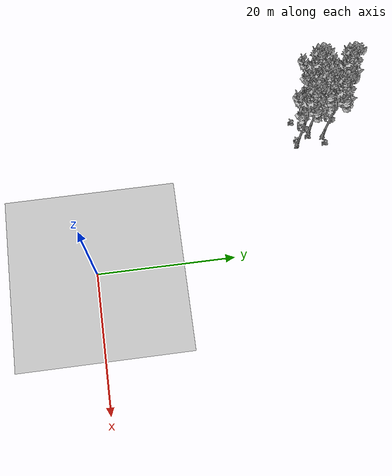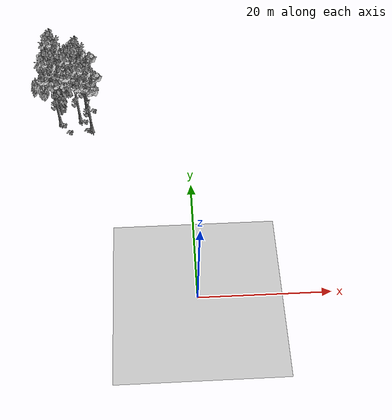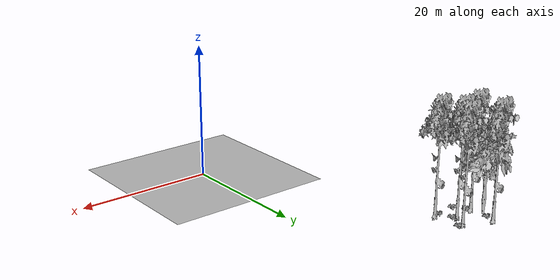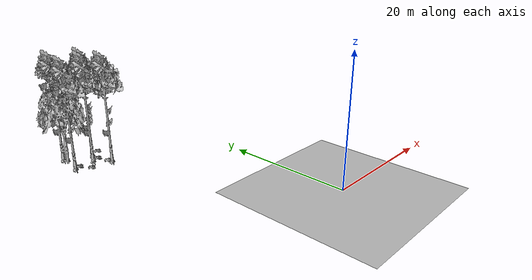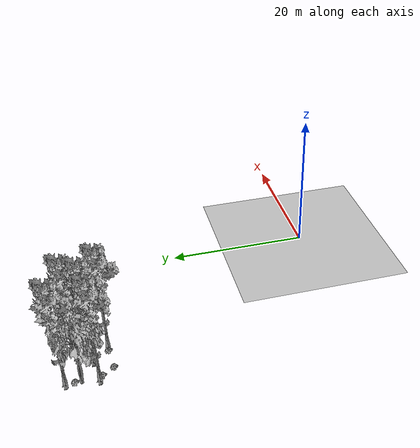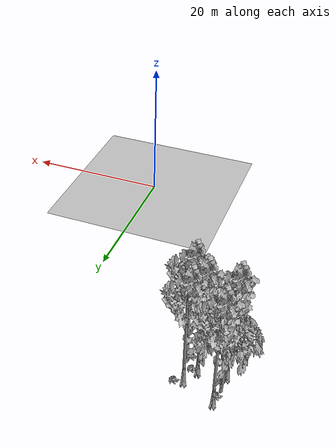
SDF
<sdf version="1.7">
 <world name="default">
  <model name="ground_plane">
   <static>1</static>
   <link name="link">
    <collision name="collision">
     <pose>-50 0 0 0 -0 0</pose>
     <geometry><plane><normal>0 0 1</normal><size>80 80</size></plane></geometry>
     <surface><contact><ode><min_depth>0.01</min_depth><max_vel>0</max_vel></ode></contact></surface>
    </collision>
    <visual name="grass">
     <cast_shadows>0</cast_shadows>
     <geometry>
      <mesh>
       <scale>0.46714285714285714 0.46714285714285714 0.1</scale>
       <uri>file://grass_plane/meshes/grass_plane.dae</uri>
      </mesh>
     </geometry>
    </visual>
   </link>
  </model>
  <model name="Tree 141">
   <static>1</static>
   <pose>-21.41341229493657 38.03727271975933 0 1.57079 -0 0</pose>
   <link name="link">
    <collision name="collision">
     <geometry><mesh><scale>3.5 5 3.5</scale><uri>model://tree_9/meshes/tree_9.obj</uri></mesh></geometry>
    </collision>
    <visual name="visual">
     <geometry><mesh><scale>3.5 5 3.5</scale><uri>model://tree_9/meshes/tree_9.obj</uri></mesh></geometry>
    </visual>
   </link>
  </model>
  <model name="Tree 345">
   <static>1</static>
   <pose>-21.831775435854805 35.98708940464846 0 1.57079 -0 0</pose>
   <link name="link">
    <collision name="collision">
     <geometry><mesh><scale>3.5 5 3.5</scale><uri>model://tree_2/meshes/tree_2.obj</uri></mesh></geometry>
    </collision>
    <visual name="visual">
     <geometry><mesh><scale>3.5 5 3.5</scale><uri>model://tree_2/meshes/tree_2.obj</uri></mesh></geometry>
    </visual>
   </link>
  </model>
  <model name="Tree 361">
   <static>1</static>
   <pose>-21.80328934711767 33.80714781618494 0 1.57079 -0 0</pose>
   <link name="link">
    <collision name="collision">
     <geometry><mesh><scale>3.5 5 3.5</scale><uri>model://tree_9/meshes/tree_9.obj</uri></mesh></geometry>
    </collision>
    <visual name="visual">
     <geometry><mesh><scale>3.5 5 3.5</scale><uri>model://tree_9/meshes/tree_9.obj</uri></mesh></geometry>
    </visual>
   </link>
  </model>
  <model name="Tree 411">
   <static>1</static>
   <pose>-16.357932590631563 32.11923854385074 0 1.57079 -0 0</pose>
   <link name="link">
    <collision name="collision">
     <geometry><mesh><scale>3.5 5 3.5</scale><uri>model://tree_9/meshes/tree_9.obj</uri></mesh></geometry>
    </collision>
    <visual name="visual">
     <geometry><mesh><scale>3.5 5 3.5</scale><uri>model://tree_9/meshes/tree_9.obj</uri></mesh></geometry>
    </visual>
   </link>
  </model>
  <model name="Tree 426">
   <static>1</static>
   <pose>-17.32260777261818 36.244587410726865 0 1.57079 -0 0</pose>
   <link name="link">
    <collision name="collision">
     <geometry><mesh><scale>3.5 5 3.5</scale><uri>model://tree_9/meshes/tree_9.obj</uri></mesh></geometry>
    </collision>
    <visual name="visual">
     <geometry><mesh><scale>3.5 5 3.5</scale><uri>model://tree_9/meshes/tree_9.obj</uri></mesh></geometry>
    </visual>
   </link>
  </model>
  <model name="Tree 492">
   <static>1</static>
   <pose>-18.399342285569094 34.29370846161471 0 1.57079 -0 0</pose>
   <link name="link">
    <collision name="collision">
     <geometry><mesh><scale>3.5 5 3.5</scale><uri>model://tree_9/meshes/tree_9.obj</uri></mesh></geometry>
    </collision>
    <visual name="visual">
     <geometry><mesh><scale>3.5 5 3.5</scale><uri>model://tree_9/meshes/tree_9.obj</uri></mesh></geometry>
    </visual>
   </link>
  </model>
  <model name="Bush 70">
   <static>1</static>
   <pose>-20.163030724653463 31.818873183398154 0 1.57079 -0 0</pose>
   <link name="link">
    <collision name="collision">
     <geometry><mesh><scale>2 2 2</scale><uri>model://bush_2/meshes/bush_2.obj</uri></mesh></geometry>
     <surface><contact><collide_without_contact>false</collide_without_contact></contact></surface>
    </collision>
    <visual name="visual">
     <geometry><mesh><scale>2 2 2</scale><uri>model://bush_2/meshes/bush_2.obj</uri></mesh></geometry>
    </visual>
   </link>
  </model>
  <model name="Bush 351">
   <static>1</static>
   <pose>-17.630284817870834 33.997672452287176 0 1.57079 -0 0</pose>
   <link name="link">
    <collision name="collision">
     <geometry><mesh><scale>2 2 2</scale><uri>model://bush_2/meshes/bush_2.obj</uri></mesh></geometry>
     <surface><contact><collide_without_contact>false</collide_without_contact></contact></surface>
    </collision>
    <visual name="visual">
     <geometry><mesh><scale>2 2 2</scale><uri>model://bush_2/meshes/bush_2.obj</uri></mesh></geometry>
    </visual>
   </link>
  </model>
  <model name="Bush 460">
   <static>1</static>
   <pose>-17.0775861370064 32.14215153682703 0 1.57079 -0 0</pose>
   <link name="link">
    <collision name="collision">
     <geometry><mesh><scale>2 2 2</scale><uri>model://bush_2/meshes/bush_2.obj</uri></mesh></geometry>
     <surface><contact><collide_without_contact>false</collide_without_contact></contact></surface>
    </collision>
    <visual name="visual">
     <geometry><mesh><scale>2 2 2</scale><uri>model://bush_2/meshes/bush_2.obj</uri></mesh></geometry>
    </visual>
   </link>
  </model>
  <model name="Bush 564">
   <static>1</static>
   <pose>-21.258445919101288 33.38302321527823 0 1.57079 -0 0</pose>
   <link name="link">
    <collision name="collision">
     <geometry><mesh><scale>2 2 2</scale><uri>model://bush_2/meshes/bush_2.obj</uri></mesh></geometry>
     <surface><contact><collide_without_contact>false</collide_without_contact></contact></surface>
    </collision>
    <visual name="visual">
     <geometry><mesh><scale>2 2 2</scale><uri>model://bush_2/meshes/bush_2.obj</uri></mesh></geometry>
    </visual>
   </link>
  </model>
  <model name="Bush 585">
   <static>1</static>
   <pose>-21.513536461616127 36.81775820005738 0 1.57079 -0 0</pose>
   <link name="link">
    <collision name="collision">
     <geometry><mesh><scale>2 2 2</scale><uri>model://bush_2/meshes/bush_2.obj</uri></mesh></geometry>
     <surface><contact><collide_without_contact>false</collide_without_contact></contact></surface>
    </collision>
    <visual name="visual">
     <geometry><mesh><scale>2 2 2</scale><uri>model://bush_2/meshes/bush_2.obj</uri></mesh></geometry>
    </visual>
   </link>
  </model>
  <model name="Bush 589">
   <static>1</static>
   <pose>-16.2182883632797 36.38353841538175 0 1.57079 -0 0</pose>
   <link name="link">
    <collision name="collision">
     <geometry><mesh><scale>2 2 2</scale><uri>model://bush_2/meshes/bush_2.obj</uri></mesh></geometry>
     <surface><contact><collide_without_contact>false</collide_without_contact></contact></surface>
    </collision>
    <visual name="visual">
     <geometry><mesh><scale>2 2 2</scale><uri>model://bush_2/meshes/bush_2.obj</uri></mesh></geometry>
    </visual>
   </link>
  </model>
 </world>
</sdf>
